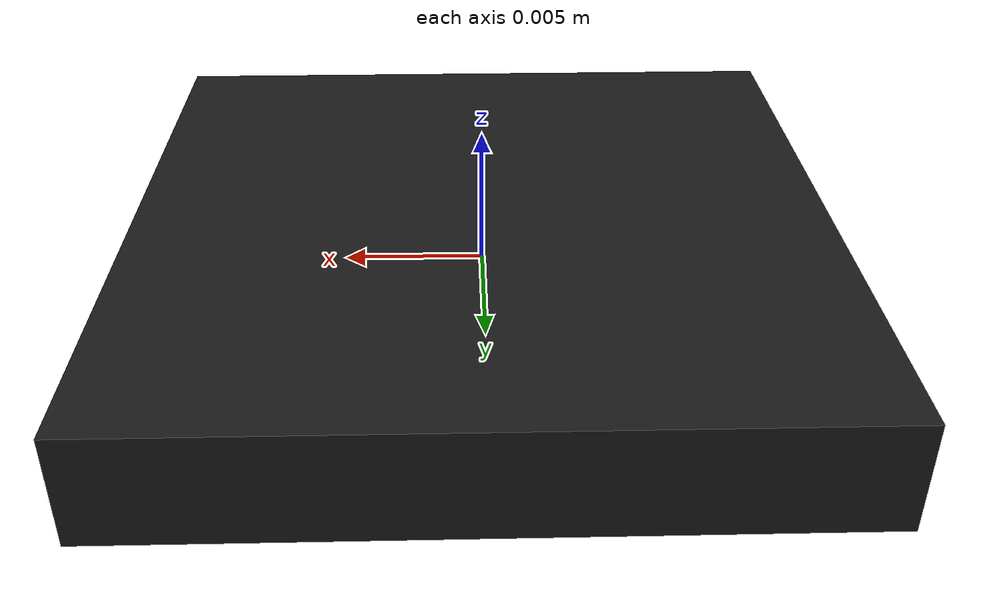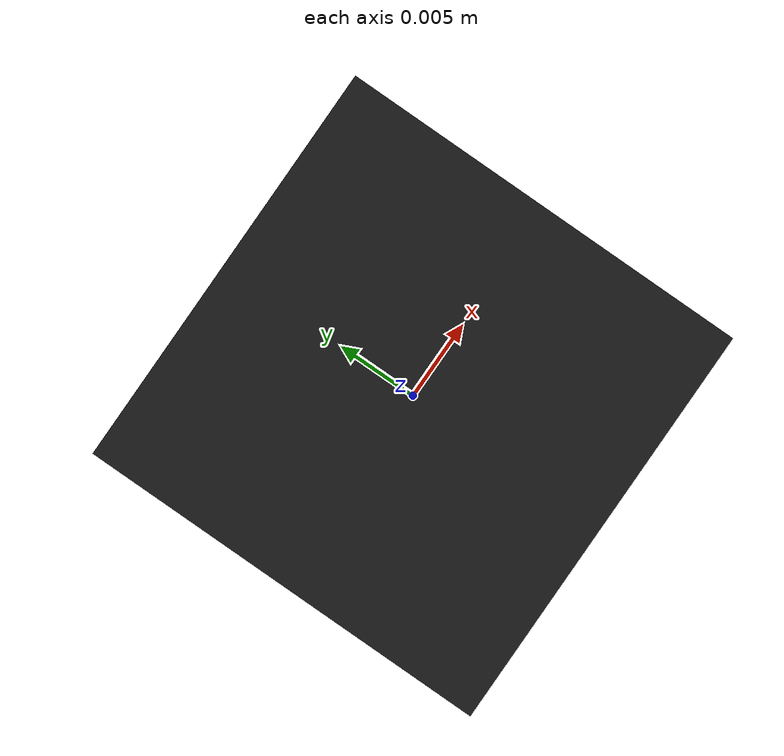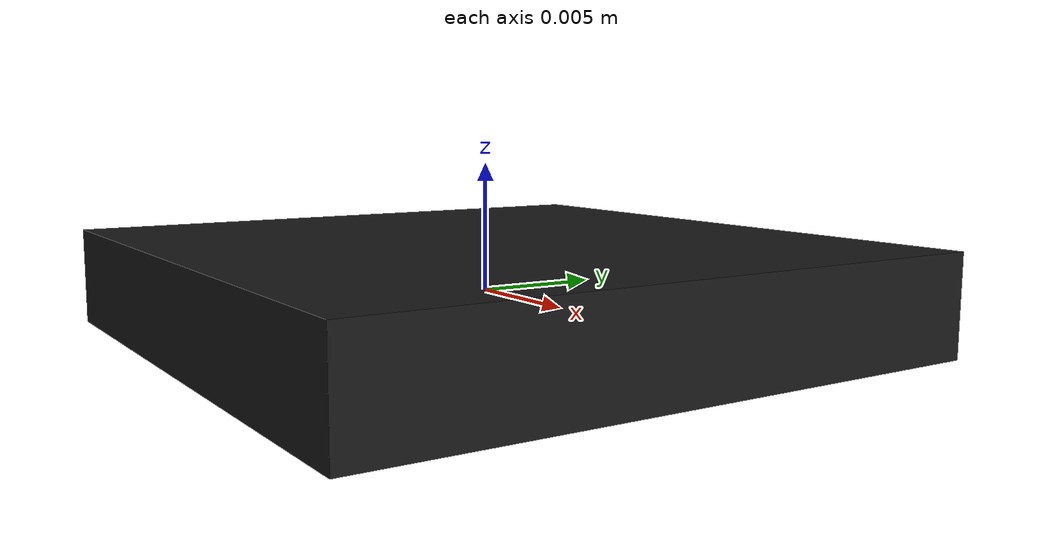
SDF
<?xml version="1.0"?>
<sdf version="1.9">
  <model name="camera">
    <pose>0 0 0 0 0 0</pose>

    <link name="camera_link">
      <inertial>
        <mass>0.01</mass>
        <inertia>
          <ixx>0.000001</ixx>
          <ixy>0</ixy>
          <ixz>0</ixz>
          <iyy>0.000001</iyy>
          <iyz>0</iyz>
          <izz>0.000001</izz>
        </inertia>
      </inertial>

      <visual name="camera_body_visual">
        <geometry>
          <box>
            <size>0.025 0.025 0.004</size>  <!-- tamaño de cámara raspberry -->
          </box>
        </geometry>
        <material>
          <ambient>0.1 0.1 0.1 1</ambient>
          <diffuse>0.1 0.1 0.1 1</diffuse>
          <specular>0.01 0.01 0.01 1</specular>
        </material>
      </visual>

      <collision name="camera_body_collision">
        <geometry>
          <box>
            <size>0.025 0.025 0.004</size>
          </box>
        </geometry>
      </collision>

      <sensor name="camera" type="camera">
        <gz_frame_id>camera_link</gz_frame_id>    <!-- ID del marco de referencia para la cámara -->
        <pose degrees="true">0 0 0 90 90 0</pose>
        <camera>
          <horizontal_fov>1.19</horizontal_fov>   <!-- Campo de visión horizontal de la cámara (en radianes) -->
          <image>
            <width>960</width>
            <height>960</height>
          </image>
          <clip>
            <near>0.1</near>
            <far>10</far>
          </clip>
        </camera>
        <always_on>1</always_on>
        <update_rate>60</update_rate>
        <visualize>1</visualize>
        <enable_streaming>true</enable_streaming>

        <plugin filename="CameraZoomPlugin"
                name="CameraZoomPlugin">
          <max_zoom>10.0</max_zoom>
          <slew_rate>0.42514285714</slew_rate>
        </plugin>

        <plugin name="GstCameraPlugin"
                filename="GstCameraPlugin">
          <udp_host>127.0.0.1</udp_host>
          <udp_port>5600</udp_port>
          <use_basic_pipeline>true</use_basic_pipeline>
          <use_cuda>true</use_cuda>
        </plugin>
      </sensor>
    </link>
  </model>
</sdf>
